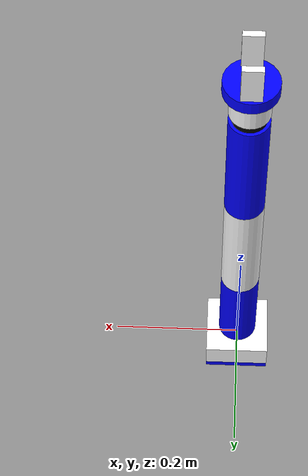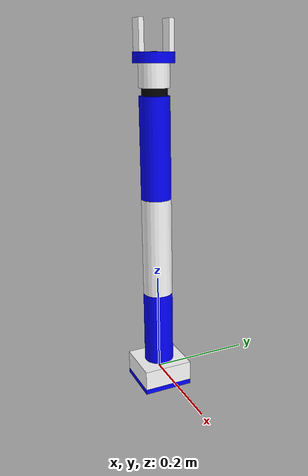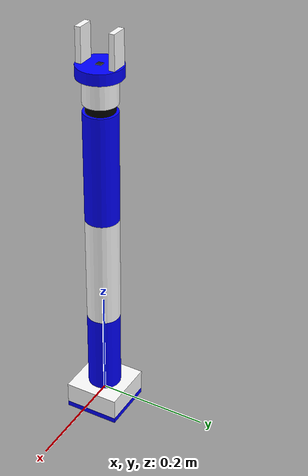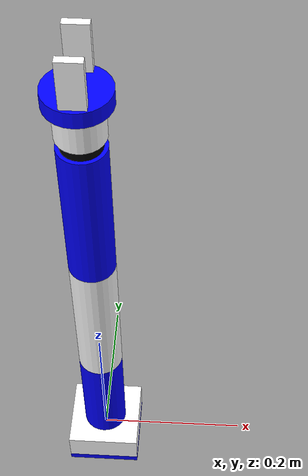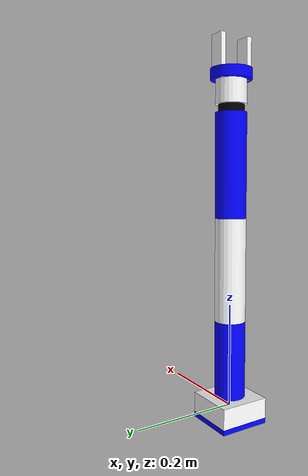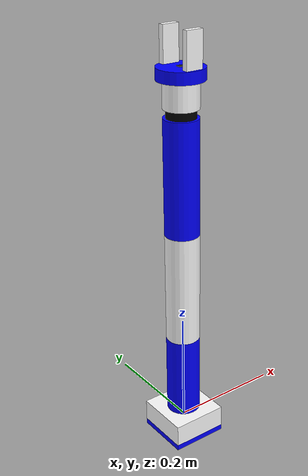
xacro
<?xml version="1.0"?>
<robot name="arm"
    xmlns:xacro="http://ros.org/wiki/xacro">

    <!-- Defining the colors used in this robot -->
    <material name="Black">
        <color rgba="0 0 0 1"/>
    </material>

    <material name="White">
        <color rgba="1 1 1 1"/>
    </material>

    <material name="Blue">
        <color rgba="0 0 1 1"/>
    </material>

    <material name="Red">
        <color rgba="1 0 0 1"/>
    </material>

    <!-- Constants -->
    <xacro:property name="M_PI" value="3.14159"/>

    <!-- link1 properties -->
    <xacro:property name="link1_width" value="0.03" />
    <xacro:property name="link1_len" value="0.15" />

    <!-- link2 properties -->
    <xacro:property name="link2_width" value="0.03" />
    <xacro:property name="link2_len" value="0.2" />

    <!-- link3 properties -->
    <xacro:property name="link3_width" value="0.03" />
    <xacro:property name="link3_len" value="0.2" />

    <!-- link4 properties -->
    <xacro:property name="link4_width" value="0.025" />
    <xacro:property name="link4_len" value="0.03" />

    <!-- link5 properties -->
    <xacro:property name="link5_width" value="0.03" />
    <xacro:property name="link5_len" value="0.06" />

    <!-- link6 properties -->
    <xacro:property name="link6_width" value="0.04" />
    <xacro:property name="link6_len" value="0.02" />

    <!-- Left gripper -->
    <xacro:property name="left_gripper_len" value="0.08" />
    <xacro:property name="left_gripper_width" value="0.01" />
    <xacro:property name="left_gripper_height" value="0.03" />

    <!-- Right gripper -->
    <xacro:property name="right_gripper_len" value="0.08" />
    <xacro:property name="right_gripper_width" value="0.01" />
    <xacro:property name="right_gripper_height" value="0.03" />

    <!-- Gripper frame -->
    <xacro:property name="grasp_frame_radius" value="0.001" />

    <!-- Inertial matrix -->
    <xacro:macro name="inertial_matrix" params="mass">
        <inertial>
            <mass value="${mass}" />
            <inertia ixx="1.0" ixy="0.0" ixz="0.0" iyy="0.5" iyz="0.0" izz="1.0" />
        </inertial>
    </xacro:macro>

    <!-- ///////////////////////////////////////   bottom_joint   ////////////////////////////////////////// -->
    <joint name="bottom_joint" type="fixed">
        <origin xyz="0 0 -0.025" rpy="0 0 0" />
        <parent link="base_link"/>
        <child link="bottom_link"/>
    </joint>
    <link name="bottom_link">
        <visual>
            <origin xyz=" 0 0 0" rpy="0 0 0"/>
            <geometry>
                <box size="0.1 0.1 0.01" />
            </geometry>
            <material name="Blue" />
        </visual>
        <collision>
            <origin xyz=" 0 0 0" rpy="0 0 0"/>
            <geometry>
                <box size="0.1 0.1 0.01" />
            </geometry>
        </collision>
        <xacro:inertial_matrix mass="1000"/>
    </link>

    <!-- /////////////////////////////////////   BASE LINK    ////////////////////////////////////////////// -->
    <link name="base_link">
        <visual>
            <origin xyz="0 0 0" rpy="0 0 0" />
            <geometry>
                <box size="0.1 0.1 0.04" />
            </geometry>
            <material name="White" />
        </visual>
        <collision>
            <origin xyz="0 0 0" rpy="0 0 0" />
            <geometry>
                <box size="0.1 0.1 0.04" />
            </geometry>
        </collision>
        <xacro:inertial_matrix mass="1"/>
    </link>

    <joint name="joint1" type="revolute">
        <parent link="base_link"/>
        <child link="link1"/>
        <origin xyz="0 0 0.02" rpy="0 ${M_PI/2} 0" />
        <axis xyz="1 0 0" />
        <limit effort="300" velocity="1" lower="-2.96" upper="2.96"/>
        <dynamics damping="50" friction="1"/>
    </joint>

    <!-- /////////////////////////////////////   LINK1  ////////////////////////////////////////////// -->
    <link name="link1">
        <visual>
            <origin xyz="-${link1_len/2} 0 0" rpy="0 ${M_PI/2} 0" />
            <geometry>
                <cylinder radius="${link1_width}" length="${link1_len}"/>
            </geometry>
            <material name="Blue" />
        </visual>
        <collision>
            <origin xyz="-${link1_len/2} 0 0" rpy="0 ${M_PI/2} 0" />
            <geometry>
                <cylinder radius="${link1_width/10}" length="${link1_len/10}"/>
            </geometry>
        </collision>
        <xacro:inertial_matrix mass="1"/>
    </link>

    <joint name="joint2" type="revolute">
        <parent link="link1"/>
        <child link="link2"/>
        <origin xyz="-${link1_len} 0 0.0" rpy="-${M_PI/2} 0 ${M_PI/2}" />
        <axis xyz="1 0 0" />
        <limit effort="300" velocity="1" lower="-2.35" upper="2.35" />
        <dynamics damping="50" friction="1"/>
    </joint>

    <!-- ///////////////////////////////////////   LINK2  ////////////////////////////////////////////// -->
    <link name="link2">
        <visual>
            <origin xyz="0 0 ${link2_len/2}" rpy="0 0 0" />
            <geometry>
                <cylinder radius="${link2_width}" length="${link2_len}"/>
            </geometry>
            <material name="White" />
        </visual>

        <collision>
            <origin xyz="0 0 ${link2_len/2}" rpy="0 0 0" />
            <geometry>
                <cylinder radius="${link2_width/10}" length="${link2_len/10}"/>
            </geometry>
        </collision>
        <xacro:inertial_matrix mass="1"/>
    </link>

    <joint name="joint3" type="revolute">
        <parent link="link2"/>
        <child link="link3"/>
        <origin xyz="0 0 ${link2_len}" rpy="0 ${M_PI} 0" />
        <axis xyz="-1 0 0" />
        <limit effort="300" velocity="1" lower="-2.62" upper="2.62" />
        <dynamics damping="50" friction="1"/>
    </joint>

    <!-- /////////////////////////////////   LINK3  ///////////////////////////////////////////////////// -->
    <link name="link3">
        <visual>
            <origin xyz="0 0 -${link3_len/2}" rpy="0 0 0" />
            <geometry>
                <cylinder radius="${link3_width}" length="${link3_len}"/>
            </geometry>
            <material name="Blue" />
        </visual>
        <collision>
            <origin xyz="0 0 -${link3_len/2}" rpy="0 0 0" />
            <geometry>
                <cylinder radius="${link3_width/10}" length="${link3_len/10}"/>
            </geometry>
        </collision>
        <xacro:inertial_matrix mass="1"/>
    </link>

    <joint name="joint4" type="revolute">
        <parent link="link3"/>
        <child link="link4"/>
        <origin xyz="0.0 0.0 -${link3_len}" rpy="0 ${M_PI/2} ${M_PI}" />
        <axis xyz="1 0 0" />
        <limit effort="300" velocity="1" lower="-2.62" upper="2.62" />
        <dynamics damping="50" friction="1"/>
    </joint>

    <!-- ///////////////////////////////////   LINK4  //////////////////////////////////////////////// -->
    <link name="link4">
        <visual>
            <origin xyz="${link4_len/2} 0 0" rpy="0 ${M_PI/2} 0" />
            <geometry>
                <cylinder radius="${link4_width}" length="${link4_len}"/>
            </geometry>
            <material name="Black" />
        </visual>
        <collision>
            <origin xyz="${link4_len/2} 0 0" rpy="0 ${M_PI/2} 0" />
            <geometry>
                <cylinder radius="${link4_width}" length="${link4_len}"/>
            </geometry>
        </collision>
        <xacro:inertial_matrix mass="1"/>
    </link>

    <joint name="joint5" type="revolute">
        <parent link="link4"/>
        <child link="link5"/>
        <origin xyz="${link4_len} 0.0 0.0" rpy="0 ${M_PI/2} 0" />
        <axis xyz="-1 0 0" />
        <limit effort="300" velocity="1" lower="-2.62" upper="2.62" />
        <dynamics damping="50" friction="1"/>
    </joint>

    <!-- //////////////////////////////////   LINK5  ///////////////////////////////////////////////// -->
    <link name="link5">
        <visual>
            <origin xyz="0 0 ${link4_len/2}" rpy="0 0 0" />
            <geometry>
                <cylinder radius="${link5_width}" length="${link5_len}"/>
            </geometry>
            <material name="White" />
        </visual>
        <collision>
            <origin xyz="0 0 ${link4_len/2} " rpy="0 0 0" />
            <geometry>
                <cylinder radius="${link5_width}" length="${link5_len}"/>
            </geometry>
        </collision>
        <xacro:inertial_matrix mass="1"/>
    </link>

    <joint name="joint6" type="revolute">
        <parent link="link5"/>
        <child link="link6"/>
        <origin xyz="0 0 ${link4_len}" rpy="${1.5*M_PI} -${M_PI/2} 0" />
        <axis xyz="1 0 0" />
        <limit effort="300" velocity="1" lower="-6.28" upper="6.28" />
        <dynamics damping="50" friction="1"/>
    </joint>

    <!-- ////////////////////////////////   LINK6  ///////////////////////////////////////////////// -->
    <link name="link6">
        <visual>
            <origin xyz="${link6_len/2} 0 0 " rpy="0 ${M_PI/2} 0" />
            <geometry>
                <cylinder radius="${link6_width}" length="${link6_len}"/>
            </geometry>
            <material name="Blue" />
        </visual>
        <collision>
            <origin xyz="${link6_len/2} 0 0" rpy="0 ${M_PI/2} 0" />
            <geometry>
                <cylinder radius="${link6_width}" length="${link6_len}"/>
            </geometry>
        </collision>
        <xacro:inertial_matrix mass="1"/>
    </link>

    <joint name="finger_joint1" type="prismatic">
        <parent link="link6"/>
        <child link="gripper_finger_link1"/>
        <origin xyz="0.0 0 0" />
        <axis xyz="0 1 0" />
        <limit effort="100" lower="0" upper="0.015" velocity="0.05"/>
        <dynamics damping="50" friction="1"/>
    </joint>

    <!-- //////////////////////////////////////   gripper   ////////////////////////////////////////////// -->
    <!-- LEFT GRIPPER AFT LINK -->
    <link name="gripper_finger_link1">
        <visual>
            <origin xyz="0.04 -0.03 0"/>
            <geometry>
                <box size="${left_gripper_len} ${left_gripper_width} ${left_gripper_height}" />
            </geometry>
            <material name="White" />
        </visual>
        <collision>
            <origin xyz="0.04 -0.03 0"/>
            <geometry>
                <box size="${left_gripper_len/2} ${left_gripper_width} ${left_gripper_height}" />
            </geometry>
        </collision>
        <contact_coefficients mu="200.0" kp="0.0" kd="0.0"/>
        <xacro:inertial_matrix mass="1"/>
    </link>

    <joint name="finger_joint2" type="prismatic">
        <parent link="link6"/>
        <child link="gripper_finger_link2"/>
        <origin xyz="0.0 0 0" />
        <axis xyz="0 -1 0" />
        <limit effort="100" lower="0" upper="0.015" velocity="0.05"/>
        <dynamics damping="50" friction="1"/>
    </joint>

    <!-- RIGHT GRIPPER AFT LINK -->
    <link name="gripper_finger_link2">
        <visual>
            <origin xyz="0.04 0.03 0"/>
            <geometry>
                <box size="${right_gripper_len} ${right_gripper_width} ${right_gripper_height}" />
            </geometry>
            <material name="White" />
        </visual>
        <collision>
            <origin xyz="0.04 0.03 0"/>
            <geometry>
                <box size="${right_gripper_len/2} ${right_gripper_width} ${right_gripper_height}" />
            </geometry>
        </collision>
        <contact_coefficients mu="200.0" kp="0.0" kd="0.0"/>
        <xacro:inertial_matrix mass="1"/>
    </link>

    <!-- Grasping frame -->
    <link name="grasping_frame"/>

    <joint name="grasping_frame_joint" type="fixed">
        <parent link="link6"/>
        <child link="grasping_frame"/>
        <origin xyz="0.08 0 0" rpy="0 0 0"/>
    </joint>

    <!-- /////////////////////////////////   camera   ////////////////////////////////////// -->
    <xacro:include filename="camera.xacro" />
    <xacro:include filename="camera_sensor.xacro" />

    <!-- /////////////////////////////////   Gazebo   ////////////////////////////////////// -->
    <gazebo reference="bottom_link">
        <material>Gazebo/Black</material>
    </gazebo>
    <gazebo reference="base_link">
        <material>Gazebo/White</material>
    </gazebo>
    <gazebo reference="link1">
        <material>Gazebo/Blue</material>
    </gazebo>
    <gazebo reference="link2">
        <material>Gazebo/White</material>
    </gazebo>
    <gazebo reference="link3">
        <material>Gazebo/Blue</material>
    </gazebo>
    <gazebo reference="link4">
        <material>Gazebo/Black</material>
    </gazebo>
    <gazebo reference="link5">
        <material>Gazebo/White</material>
    </gazebo>
    <gazebo reference="link6">
        <material>Gazebo/Blue</material>
    </gazebo>
    <gazebo reference="gripper_finger_link1">
        <material>Gazebo/White</material>
        <mu1>1000</mu1>
        <mu2>1000</mu2>
        <kp>1000000.0</kp>
        <kd>100000.0</kd>
        <slip1>0</slip1>
        <slip2>0</slip2>
        <minDepth>0.003</minDepth>
        <maxVel>0</maxVel>
        <torsional>
            <ode>
                <coefficient>1000000</coefficient>
                <slip>0</slip>
            </ode>
        </torsional>
    </gazebo>
    <gazebo reference="gripper_finger_link2">
        <material>Gazebo/White</material>
        <mu1>1000</mu1>
        <mu2>1000</mu2>
        <kp>1000000.0</kp>
        <kd>100000.0</kd>
        <slip1>0</slip1>
        <slip2>0</slip2>
        <minDepth>0.003</minDepth>
        <maxVel>0</maxVel>
        <torsional>
            <ode>
                <coefficient>1000000</coefficient>
                <slip>0</slip>
            </ode>
        </torsional>
    </gazebo>

    <!-- Transmissions for ROS Control -->
    <xacro:macro name="transmission_block" params="joint_name">
        <transmission name="tran1">
            <type>transmission_interface/SimpleTransmission</type>
            <joint name="${joint_name}">
                <hardwareInterface>hardware_interface/PositionJointInterface</hardwareInterface>
            </joint>
            <actuator name="motor1">
                <hardwareInterface>hardware_interface/PositionJointInterface</hardwareInterface>
                <mechanicalReduction>1</mechanicalReduction>
            </actuator>
        </transmission>
    </xacro:macro>

    <xacro:transmission_block joint_name="joint1"/>
    <xacro:transmission_block joint_name="joint2"/>
    <xacro:transmission_block joint_name="joint3"/>
    <xacro:transmission_block joint_name="joint4"/>
    <xacro:transmission_block joint_name="joint5"/>
    <xacro:transmission_block joint_name="joint6"/>
    <xacro:transmission_block joint_name="finger_joint1"/>
    <xacro:transmission_block joint_name="finger_joint2"/>

    <!-- ros_control plugin -->
    <gazebo>
        <plugin name="gazebo_ros_control" filename="libgazebo_ros_control.so">
            <robotNamespace>/arm</robotNamespace>
        </plugin>
        <plugin name="gazebo_grasp_fix" filename="libgazebo_grasp_fix.so">
            <arm>
                <arm_name>arm</arm_name>
                <gripper_link> gripper_finger_link1 </gripper_link>
                <gripper_link> gripper_finger_link2 </gripper_link>
            </arm>
            <forces_angle_tolerance>100</forces_angle_tolerance>
            <update_rate>4</update_rate>
            <grip_count_threshold>4</grip_count_threshold>
            <max_grip_count>8</max_grip_count>
            <release_tolerance>0.005</release_tolerance>
            <disable_collisions_on_attach>false</disable_collisions_on_attach>
            <contact_topic>__default_topic__</contact_topic>
        </plugin>

    </gazebo>

</robot>

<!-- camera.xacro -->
<!-- xacro of camera -->

<robot name="camera" xmlns:xacro="http://wiki.ros.org/xacro">
    <!-- include files -->
    <xacro:include filename="utils_inertia.xacro" />

    <!-- properties -->
    <xacro:property name="camera_length" value="0.001" /> <!-- length(x) -->
    <xacro:property name="camera_width" value="0.01" /> <!-- width(y) -->
    <xacro:property name="camera_height" value="0.01" /> <!-- height(z) -->
    <xacro:property name="camera_x" value="0.0205" /> <!-- connection_pos x -->
    <xacro:property name="camera_y" value="0.0" /> <!-- connection_pos y -->
    <xacro:property name="camera_z" value="0.0" /> <!-- connection_pos z -->

    <xacro:property name="camera_m" value="0.01" /> <!-- mass -->

    <!-- camera link -->
    <link name="camera">
        <visual>
            <geometry>
                <box size="${camera_length} ${camera_width} ${camera_height}" />
            </geometry>
            <origin xyz="0.0 0.0 0.0" rpy="0.0 0.0 0.0" />
            <material name="black" />
        </visual>
        <collision>
            <geometry>
                <box size="${camera_length} ${camera_width} ${camera_height}" />
            </geometry>
            <origin xyz="0.0 0.0 0.0" rpy="0.0 0.0 0.0" />
        </collision>
        <xacro:Box_inertial_matrix m="${camera_m}" l="${camera_length}" w="${camera_width}" h="${camera_height}" />
    </link>

    <joint name="camera2base_link" type="fixed">
        <parent link="link6" />
        <child link="camera" />
        <origin xyz="${camera_x} ${camera_y} ${camera_z}" rpy="3.1416 0.0 0.0" />
    </joint>
    <gazebo reference="camera">
        <material>Gazebo/Black</material>
    </gazebo>
</robot>

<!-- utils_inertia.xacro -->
<robot xmlns:xacro="http://wiki.ros.org/xacro">
    <!-- inertia matrix -->
    <xacro:macro name="sphere_inertial_matrix" params="m r">
        <inertial>
            <mass value="${m}" />
            <inertia ixx="${2*m*r*r/5}" ixy="0" ixz="0"
                iyy="${2*m*r*r/5}" iyz="0"
                izz="${2*m*r*r/5}" />
        </inertial>
    </xacro:macro>

    <xacro:macro name="cylinder_inertial_matrix" params="m r h">
        <inertial>
            <mass value="${m}" />
            <inertia ixx="${m*(3*r*r+h*h)/12}" ixy = "0" ixz = "0"
                iyy="${m*(3*r*r+h*h)/12}" iyz = "0"
                izz="${m*r*r/2}" />
        </inertial>
    </xacro:macro>

    <xacro:macro name="Box_inertial_matrix" params="m l w h">
       <inertial>
               <mass value="${m}" />
               <inertia ixx="${m*(h*h + l*l)/12}" ixy = "0" ixz = "0"
                   iyy="${m*(w*w + l*l)/12}" iyz= "0"
                   izz="${m*(w*w + h*h)/12}" />
       </inertial>
   </xacro:macro>
</robot>
